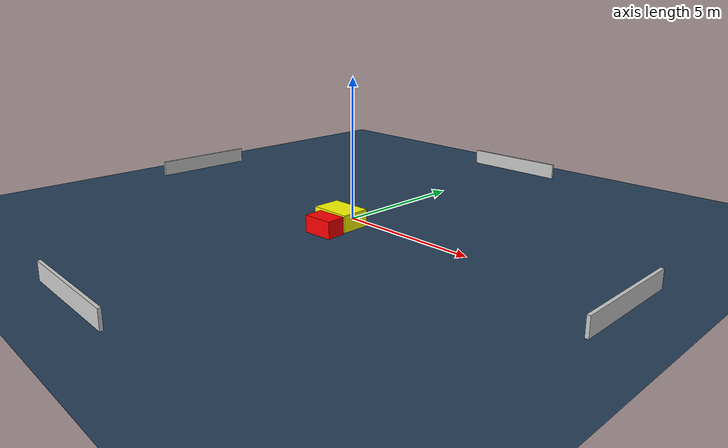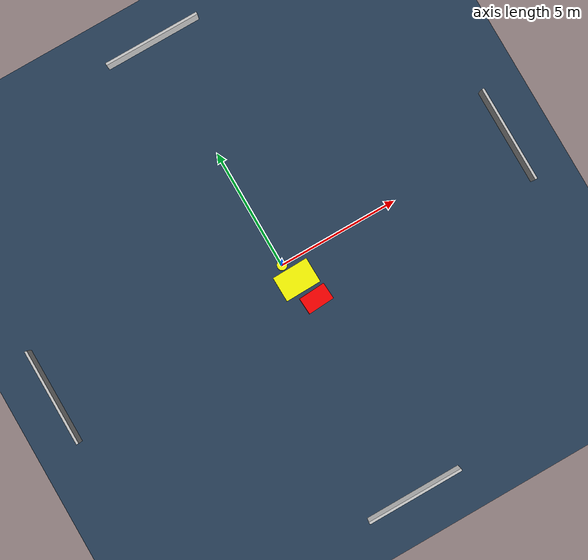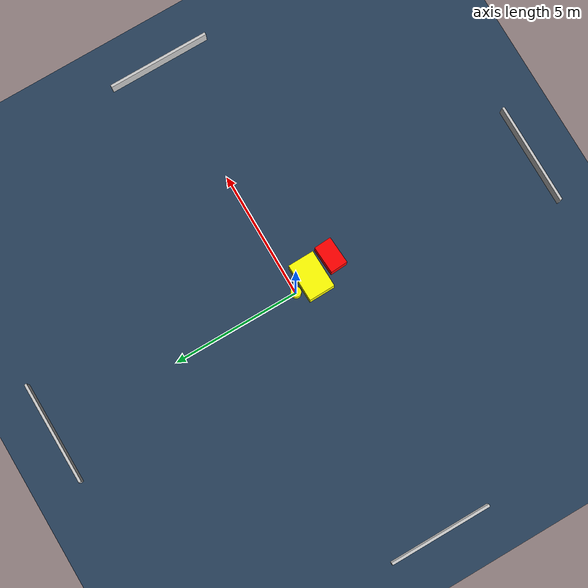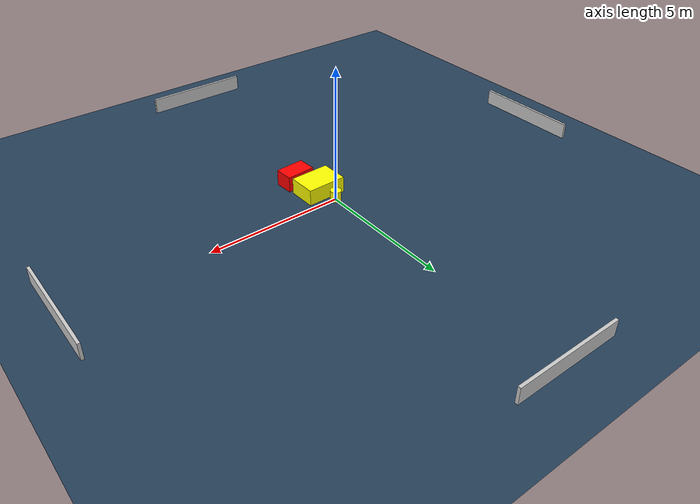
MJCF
<?xml version="1.0" ?>
<mujoco model="generated_environment">
  <option timestep="0.01" integrator="RK4" cone="elliptic"/>
  <default>
    <geom density="1"/>
  </default>
  <asset>
    <texture builtin="gradient" height="3072" name="skybox" rgb1="0.3 0.5 0.7" rgb2="0 0 0" type="skybox" width="512"/>
    <texture builtin="checker" height="300" name="groundplane" rgb1="0.2 0.3 0.4" rgb2="0.1 0.2 0.3" type="2d" width="300"/>
    <material name="groundplane" reflectance="0.2" texrepeat="5 5" texture="groundplane"/>
  </asset>
  <worldbody>
    <light dir="0 0 -1" directional="true" pos="0 0 1.5"/>
    <geom condim="3" friction="0.5 0.005 0.001" material="groundplane" name="floor" pos="0 0 0" size="0 0 0.05" type="plane"/>
    <body name="walls">
      <geom name="wall_1" condim="4" pos="-10.0 0.0 0.3" rgba="0.800000011920929 0.800000011920929 0.800000011920929 1.0" size="0.05 2.0 0.3" type="box"/>
      <geom name="wall_2" condim="4" pos="10.0 0.0 0.3" rgba="0.800000011920929 0.800000011920929 0.800000011920929 1.0" size="0.05 2.0 0.3" type="box"/>
      <geom name="wall_3" condim="4" pos="0.0 -10.0 0.3" rgba="0.800000011920929 0.800000011920929 0.800000011920929 1.0" size="2.0 0.05 0.3" type="box"/>
      <geom name="wall_4" condim="4" pos="0.0 10.0 0.3" rgba="0.800000011920929 0.800000011920929 0.800000011920929 1.0" size="2.0 0.05 0.3" type="box"/>
    </body>
    <body name="robot">
      <joint name="joint_x" type="slide" pos="0 0 0" axis="1 0 0"/>
      <joint name="joint_y" type="slide" pos="0 0 0" axis="0 1 0"/>
      <geom name="robot" type="cylinder" pos="0.0 0.0 0.2" size="0.2 0.2 0.0" mass="5.0" friction="1.0 0.005 0.0001" condim="4" rgba="1.0 1.0 0.0 1.0"/>
    </body>
    <body name="obstacle_1_movable">
      <geom name="obstacle_1_movable" condim="4" pos="0.19805269032649014 -0.7628291212302336 0.3" euler="0 0 181.21961816948559" friction="0.0 0.005 0.001" rgba="1.0 1.0 0.0 1.0" size="0.7377038304158305 0.5152899603152477 0.3" type="box" mass="0.1"/>
      <joint type="free"/>
    </body>
    <body name="obstacle_2_static">
      <geom name="obstacle_2_static" condim="4" pos="0.4950782605392954 -1.7525259904420778 0.3" euler="0 0 273.57640574233193" friction="0.0 0.005 0.001" rgba="1.0 0.0 0.0 1.0" size="0.3424109753472484 0.5435491235717117 0.3" type="box"/>
    </body>
  </worldbody>
  <actuator>
    <motor name="actuator_x" joint="joint_x" gear="1" ctrlrange="-1 1"/>
    <motor name="actuator_y" joint="joint_y" gear="1" ctrlrange="-1 1"/>
  </actuator>
</mujoco>
